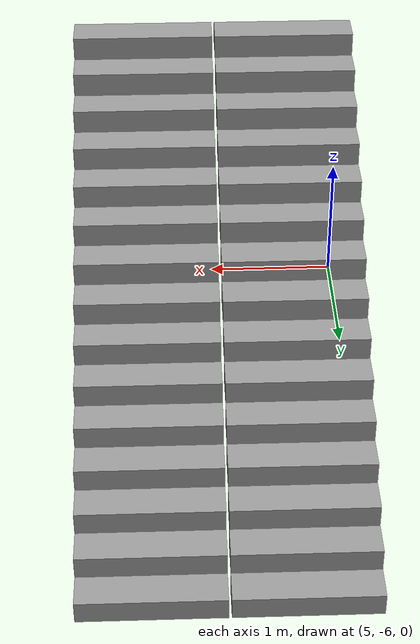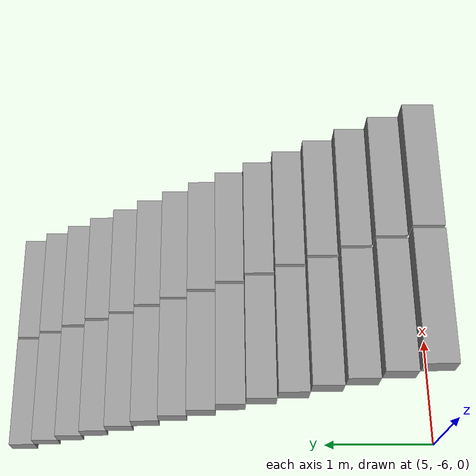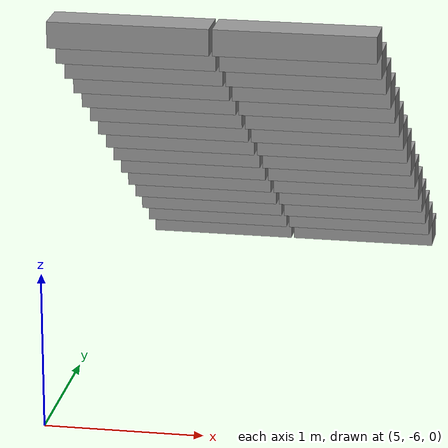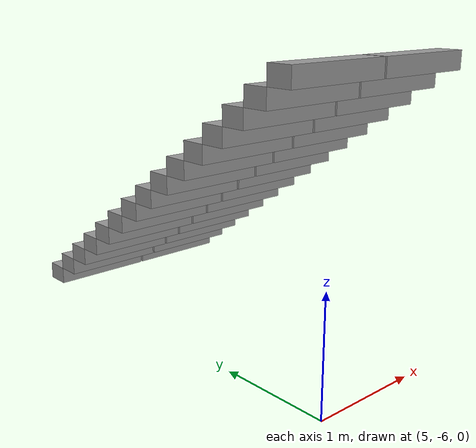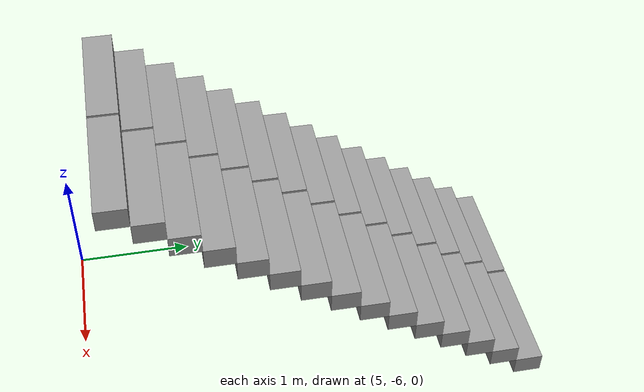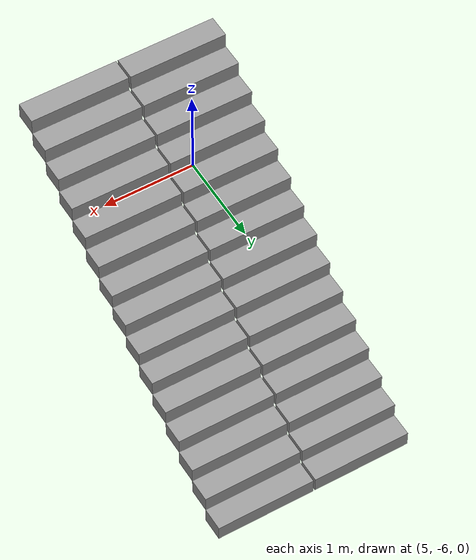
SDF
<?xml version='1.0'?>
<sdf version='1.6'>
  <model name='konetalo'>
    <pose frame=''>5.9917 -3.89254 0 0 -0 0</pose>
    <link name='Stairs_0'>
      <visual name='Stairs_0_Visual_0'>
        <pose frame=''>0.510092 1.63333 0.083333 0 -0 0</pose>
        <geometry>
          <box>
            <size>1 0.233333 0.166667</size>
          </box>
        </geometry>
        <material>
          <script>
            <uri>file://media/materials/scripts/gazebo.material</uri>
            <name>Gazebo/Grey</name>
          </script>
          <ambient>1 1 1 1</ambient>
        </material>
      </visual>
      <collision name='Stairs_0_Collision_0'>
        <geometry>
          <box>
            <size>1 0.233333 0.166667</size>
          </box>
        </geometry>
        <pose frame=''>0.510092 1.63333 0.083333 0 -0 0</pose>
      </collision>
      <visual name='Stairs_0_Visual_1'>
        <pose frame=''>0.510092 1.4 0.25 0 -0 0</pose>
        <geometry>
          <box>
            <size>1 0.233333 0.166667</size>
          </box>
        </geometry>
        <material>
          <script>
            <uri>file://media/materials/scripts/gazebo.material</uri>
            <name>Gazebo/Grey</name>
          </script>
          <ambient>1 1 1 1</ambient>
        </material>
      </visual>
      <collision name='Stairs_0_Collision_1'>
        <geometry>
          <box>
            <size>1 0.233333 0.166667</size>
          </box>
        </geometry>
        <pose frame=''>0.510092 1.4 0.25 0 -0 0</pose>
      </collision>
      <visual name='Stairs_0_Visual_2'>
        <pose frame=''>0.510092 1.16667 0.416667 0 -0 0</pose>
        <geometry>
          <box>
            <size>1 0.233333 0.166667</size>
          </box>
        </geometry>
        <material>
          <script>
            <uri>file://media/materials/scripts/gazebo.material</uri>
            <name>Gazebo/Grey</name>
          </script>
          <ambient>1 1 1 1</ambient>
        </material>
      </visual>
      <collision name='Stairs_0_Collision_2'>
        <geometry>
          <box>
            <size>1 0.233333 0.166667</size>
          </box>
        </geometry>
        <pose frame=''>0.510092 1.16667 0.416667 0 -0 0</pose>
      </collision>
      <visual name='Stairs_0_Visual_3'>
        <pose frame=''>0.510092 0.933333 0.583333 0 -0 0</pose>
        <geometry>
          <box>
            <size>1 0.233333 0.166667</size>
          </box>
        </geometry>
        <material>
          <script>
            <uri>file://media/materials/scripts/gazebo.material</uri>
            <name>Gazebo/Grey</name>
          </script>
          <ambient>1 1 1 1</ambient>
        </material>
      </visual>
      <collision name='Stairs_0_Collision_3'>
        <geometry>
          <box>
            <size>1 0.233333 0.166667</size>
          </box>
        </geometry>
        <pose frame=''>0.510092 0.933333 0.583333 0 -0 0</pose>
      </collision>
      <visual name='Stairs_0_Visual_4'>
        <pose frame=''>0.510092 0.7 0.75 0 -0 0</pose>
        <geometry>
          <box>
            <size>1 0.233333 0.166667</size>
          </box>
        </geometry>
        <material>
          <script>
            <uri>file://media/materials/scripts/gazebo.material</uri>
            <name>Gazebo/Grey</name>
          </script>
          <ambient>1 1 1 1</ambient>
        </material>
      </visual>
      <collision name='Stairs_0_Collision_4'>
        <geometry>
          <box>
            <size>1 0.233333 0.166667</size>
          </box>
        </geometry>
        <pose frame=''>0.510092 0.7 0.75 0 -0 0</pose>
      </collision>
      <visual name='Stairs_0_Visual_5'>
        <pose frame=''>0.510092 0.466667 0.916667 0 -0 0</pose>
        <geometry>
          <box>
            <size>1 0.233333 0.166667</size>
          </box>
        </geometry>
        <material>
          <script>
            <uri>file://media/materials/scripts/gazebo.material</uri>
            <name>Gazebo/Grey</name>
          </script>
          <ambient>1 1 1 1</ambient>
        </material>
      </visual>
      <collision name='Stairs_0_Collision_5'>
        <geometry>
          <box>
            <size>1 0.233333 0.166667</size>
          </box>
        </geometry>
        <pose frame=''>0.510092 0.466667 0.916667 0 -0 0</pose>
      </collision>
      <visual name='Stairs_0_Visual_6'>
        <pose frame=''>0.510092 0.233333 1.08333 0 -0 0</pose>
        <geometry>
          <box>
            <size>1 0.233333 0.166667</size>
          </box>
        </geometry>
        <material>
          <script>
            <uri>file://media/materials/scripts/gazebo.material</uri>
            <name>Gazebo/Grey</name>
          </script>
          <ambient>1 1 1 1</ambient>
        </material>
      </visual>
      <collision name='Stairs_0_Collision_6'>
        <geometry>
          <box>
            <size>1 0.233333 0.166667</size>
          </box>
        </geometry>
        <pose frame=''>0.510092 0.233333 1.08333 0 -0 0</pose>
      </collision>
      <visual name='Stairs_0_Visual_7'>
        <pose frame=''>0.510092 0 1.25 0 -0 0</pose>
        <geometry>
          <box>
            <size>1 0.233333 0.166667</size>
          </box>
        </geometry>
        <material>
          <script>
            <uri>file://media/materials/scripts/gazebo.material</uri>
            <name>Gazebo/Grey</name>
          </script>
          <ambient>1 1 1 1</ambient>
        </material>
      </visual>
      <collision name='Stairs_0_Collision_7'>
        <geometry>
          <box>
            <size>1 0.233333 0.166667</size>
          </box>
        </geometry>
        <pose frame=''>0.510092 0 1.25 0 -0 0</pose>
      </collision>
      <visual name='Stairs_0_Visual_8'>
        <pose frame=''>0.510092 -0.233334 1.41667 0 -0 0</pose>
        <geometry>
          <box>
            <size>1 0.233333 0.166667</size>
          </box>
        </geometry>
        <material>
          <script>
            <uri>file://media/materials/scripts/gazebo.material</uri>
            <name>Gazebo/Grey</name>
          </script>
          <ambient>1 1 1 1</ambient>
        </material>
      </visual>
      <collision name='Stairs_0_Collision_8'>
        <geometry>
          <box>
            <size>1 0.233333 0.166667</size>
          </box>
        </geometry>
        <pose frame=''>0.510092 -0.233334 1.41667 0 -0 0</pose>
      </collision>
      <visual name='Stairs_0_Visual_9'>
        <pose frame=''>0.510092 -0.466667 1.58333 0 -0 0</pose>
        <geometry>
          <box>
            <size>1 0.233333 0.166667</size>
          </box>
        </geometry>
        <material>
          <script>
            <uri>file://media/materials/scripts/gazebo.material</uri>
            <name>Gazebo/Grey</name>
          </script>
          <ambient>1 1 1 1</ambient>
        </material>
      </visual>
      <collision name='Stairs_0_Collision_9'>
        <geometry>
          <box>
            <size>1 0.233333 0.166667</size>
          </box>
        </geometry>
        <pose frame=''>0.510092 -0.466667 1.58333 0 -0 0</pose>
      </collision>
      <visual name='Stairs_0_Visual_10'>
        <pose frame=''>0.510092 -0.7 1.75 0 -0 0</pose>
        <geometry>
          <box>
            <size>1 0.233333 0.166667</size>
          </box>
        </geometry>
        <material>
          <script>
            <uri>file://media/materials/scripts/gazebo.material</uri>
            <name>Gazebo/Grey</name>
          </script>
          <ambient>1 1 1 1</ambient>
        </material>
      </visual>
      <collision name='Stairs_0_Collision_10'>
        <geometry>
          <box>
            <size>1 0.233333 0.166667</size>
          </box>
        </geometry>
        <pose frame=''>0.510092 -0.7 1.75 0 -0 0</pose>
      </collision>
      <visual name='Stairs_0_Visual_11'>
        <pose frame=''>0.510092 -0.933333 1.91667 0 -0 0</pose>
        <geometry>
          <box>
            <size>1 0.233333 0.166667</size>
          </box>
        </geometry>
        <material>
          <script>
            <uri>file://media/materials/scripts/gazebo.material</uri>
            <name>Gazebo/Grey</name>
          </script>
          <ambient>1 1 1 1</ambient>
        </material>
      </visual>
      <collision name='Stairs_0_Collision_11'>
        <geometry>
          <box>
            <size>1 0.233333 0.166667</size>
          </box>
        </geometry>
        <pose frame=''>0.510092 -0.933333 1.91667 0 -0 0</pose>
      </collision>
      <visual name='Stairs_0_Visual_12'>
        <pose frame=''>0.510092 -1.16667 2.08333 0 -0 0</pose>
        <geometry>
          <box>
            <size>1 0.233333 0.166667</size>
          </box>
        </geometry>
        <material>
          <script>
            <uri>file://media/materials/scripts/gazebo.material</uri>
            <name>Gazebo/Grey</name>
          </script>
          <ambient>1 1 1 1</ambient>
        </material>
      </visual>
      <collision name='Stairs_0_Collision_12'>
        <geometry>
          <box>
            <size>1 0.233333 0.166667</size>
          </box>
        </geometry>
        <pose frame=''>0.510092 -1.16667 2.08333 0 -0 0</pose>
      </collision>
      <visual name='Stairs_0_Visual_13'>
        <pose frame=''>0.510092 -1.4 2.25 0 -0 0</pose>
        <geometry>
          <box>
            <size>1 0.233333 0.166667</size>
          </box>
        </geometry>
        <material>
          <script>
            <uri>file://media/materials/scripts/gazebo.material</uri>
            <name>Gazebo/Grey</name>
          </script>
          <ambient>1 1 1 1</ambient>
        </material>
      </visual>
      <collision name='Stairs_0_Collision_13'>
        <geometry>
          <box>
            <size>1 0.233333 0.166667</size>
          </box>
        </geometry>
        <pose frame=''>0.510092 -1.4 2.25 0 -0 0</pose>
      </collision>
      <visual name='Stairs_0_Visual_14'>
        <pose frame=''>0.510092 -1.63333 2.41667 0 -0 0</pose>
        <geometry>
          <box>
            <size>1 0.233333 0.166667</size>
          </box>
        </geometry>
        <material>
          <script>
            <uri>file://media/materials/scripts/gazebo.material</uri>
            <name>Gazebo/Grey</name>
          </script>
          <ambient>1 1 1 1</ambient>
        </material>
      </visual>
      <collision name='Stairs_0_Collision_14'>
        <geometry>
          <box>
            <size>1 0.233333 0.166667</size>
          </box>
        </geometry>
        <pose frame=''>0.510092 -1.63333 2.41667 0 -0 0</pose>
      </collision>
    </link>
    <link name='Stairs_1'>
      <visual name='Stairs_1_Visual_0'>
        <pose frame=''>-0.510092 1.63333 0.083333 0 -0 0</pose>
        <geometry>
          <box>
            <size>1 0.233333 0.166667</size>
          </box>
        </geometry>
        <material>
          <script>
            <uri>file://media/materials/scripts/gazebo.material</uri>
            <name>Gazebo/Grey</name>
          </script>
          <ambient>1 1 1 1</ambient>
        </material>
      </visual>
      <collision name='Stairs_1_Collision_0'>
        <geometry>
          <box>
            <size>1 0.233333 0.166667</size>
          </box>
        </geometry>
        <pose frame=''>-0.510092 1.63333 0.083333 0 -0 0</pose>
      </collision>
      <visual name='Stairs_1_Visual_1'>
        <pose frame=''>-0.510092 1.4 0.25 0 -0 0</pose>
        <geometry>
          <box>
            <size>1 0.233333 0.166667</size>
          </box>
        </geometry>
        <material>
          <script>
            <uri>file://media/materials/scripts/gazebo.material</uri>
            <name>Gazebo/Grey</name>
          </script>
          <ambient>1 1 1 1</ambient>
        </material>
      </visual>
      <collision name='Stairs_1_Collision_1'>
        <geometry>
          <box>
            <size>1 0.233333 0.166667</size>
          </box>
        </geometry>
        <pose frame=''>-0.510092 1.4 0.25 0 -0 0</pose>
      </collision>
      <visual name='Stairs_1_Visual_2'>
        <pose frame=''>-0.510092 1.16667 0.416667 0 -0 0</pose>
        <geometry>
          <box>
            <size>1 0.233333 0.166667</size>
          </box>
        </geometry>
        <material>
          <script>
            <uri>file://media/materials/scripts/gazebo.material</uri>
            <name>Gazebo/Grey</name>
          </script>
          <ambient>1 1 1 1</ambient>
        </material>
      </visual>
      <collision name='Stairs_1_Collision_2'>
        <geometry>
          <box>
            <size>1 0.233333 0.166667</size>
          </box>
        </geometry>
        <pose frame=''>-0.510092 1.16667 0.416667 0 -0 0</pose>
      </collision>
      <visual name='Stairs_1_Visual_3'>
        <pose frame=''>-0.510092 0.933333 0.583333 0 -0 0</pose>
        <geometry>
          <box>
            <size>1 0.233333 0.166667</size>
          </box>
        </geometry>
        <material>
          <script>
            <uri>file://media/materials/scripts/gazebo.material</uri>
            <name>Gazebo/Grey</name>
          </script>
          <ambient>1 1 1 1</ambient>
        </material>
      </visual>
      <collision name='Stairs_1_Collision_3'>
        <geometry>
          <box>
            <size>1 0.233333 0.166667</size>
          </box>
        </geometry>
        <pose frame=''>-0.510092 0.933333 0.583333 0 -0 0</pose>
      </collision>
      <visual name='Stairs_1_Visual_4'>
        <pose frame=''>-0.510092 0.7 0.75 0 -0 0</pose>
        <geometry>
          <box>
            <size>1 0.233333 0.166667</size>
          </box>
        </geometry>
        <material>
          <script>
            <uri>file://media/materials/scripts/gazebo.material</uri>
            <name>Gazebo/Grey</name>
          </script>
          <ambient>1 1 1 1</ambient>
        </material>
      </visual>
      <collision name='Stairs_1_Collision_4'>
        <geometry>
          <box>
            <size>1 0.233333 0.166667</size>
          </box>
        </geometry>
        <pose frame=''>-0.510092 0.7 0.75 0 -0 0</pose>
      </collision>
      <visual name='Stairs_1_Visual_5'>
        <pose frame=''>-0.510092 0.466667 0.916667 0 -0 0</pose>
        <geometry>
          <box>
            <size>1 0.233333 0.166667</size>
          </box>
        </geometry>
        <material>
          <script>
            <uri>file://media/materials/scripts/gazebo.material</uri>
            <name>Gazebo/Grey</name>
          </script>
          <ambient>1 1 1 1</ambient>
        </material>
      </visual>
      <collision name='Stairs_1_Collision_5'>
        <geometry>
          <box>
            <size>1 0.233333 0.166667</size>
          </box>
        </geometry>
        <pose frame=''>-0.510092 0.466667 0.916667 0 -0 0</pose>
      </collision>
      <visual name='Stairs_1_Visual_6'>
        <pose frame=''>-0.510092 0.233333 1.08333 0 -0 0</pose>
        <geometry>
          <box>
            <size>1 0.233333 0.166667</size>
          </box>
        </geometry>
        <material>
          <script>
            <uri>file://media/materials/scripts/gazebo.material</uri>
            <name>Gazebo/Grey</name>
          </script>
          <ambient>1 1 1 1</ambient>
        </material>
      </visual>
      <collision name='Stairs_1_Collision_6'>
        <geometry>
          <box>
            <size>1 0.233333 0.166667</size>
          </box>
        </geometry>
        <pose frame=''>-0.510092 0.233333 1.08333 0 -0 0</pose>
      </collision>
      <visual name='Stairs_1_Visual_7'>
        <pose frame=''>-0.510092 0 1.25 0 -0 0</pose>
        <geometry>
          <box>
            <size>1 0.233333 0.166667</size>
          </box>
        </geometry>
        <material>
          <script>
            <uri>file://media/materials/scripts/gazebo.material</uri>
            <name>Gazebo/Grey</name>
          </script>
          <ambient>1 1 1 1</ambient>
        </material>
      </visual>
      <collision name='Stairs_1_Collision_7'>
        <geometry>
          <box>
            <size>1 0.233333 0.166667</size>
          </box>
        </geometry>
        <pose frame=''>-0.510092 0 1.25 0 -0 0</pose>
      </collision>
      <visual name='Stairs_1_Visual_8'>
        <pose frame=''>-0.510092 -0.233334 1.41667 0 -0 0</pose>
        <geometry>
          <box>
            <size>1 0.233333 0.166667</size>
          </box>
        </geometry>
        <material>
          <script>
            <uri>file://media/materials/scripts/gazebo.material</uri>
            <name>Gazebo/Grey</name>
          </script>
          <ambient>1 1 1 1</ambient>
        </material>
      </visual>
      <collision name='Stairs_1_Collision_8'>
        <geometry>
          <box>
            <size>1 0.233333 0.166667</size>
          </box>
        </geometry>
        <pose frame=''>-0.510092 -0.233334 1.41667 0 -0 0</pose>
      </collision>
      <visual name='Stairs_1_Visual_9'>
        <pose frame=''>-0.510092 -0.466667 1.58333 0 -0 0</pose>
        <geometry>
          <box>
            <size>1 0.233333 0.166667</size>
          </box>
        </geometry>
        <material>
          <script>
            <uri>file://media/materials/scripts/gazebo.material</uri>
            <name>Gazebo/Grey</name>
          </script>
          <ambient>1 1 1 1</ambient>
        </material>
      </visual>
      <collision name='Stairs_1_Collision_9'>
        <geometry>
          <box>
            <size>1 0.233333 0.166667</size>
          </box>
        </geometry>
        <pose frame=''>-0.510092 -0.466667 1.58333 0 -0 0</pose>
      </collision>
      <visual name='Stairs_1_Visual_10'>
        <pose frame=''>-0.510092 -0.7 1.75 0 -0 0</pose>
        <geometry>
          <box>
            <size>1 0.233333 0.166667</size>
          </box>
        </geometry>
        <material>
          <script>
            <uri>file://media/materials/scripts/gazebo.material</uri>
            <name>Gazebo/Grey</name>
          </script>
          <ambient>1 1 1 1</ambient>
        </material>
      </visual>
      <collision name='Stairs_1_Collision_10'>
        <geometry>
          <box>
            <size>1 0.233333 0.166667</size>
          </box>
        </geometry>
        <pose frame=''>-0.510092 -0.7 1.75 0 -0 0</pose>
      </collision>
      <visual name='Stairs_1_Visual_11'>
        <pose frame=''>-0.510092 -0.933333 1.91667 0 -0 0</pose>
        <geometry>
          <box>
            <size>1 0.233333 0.166667</size>
          </box>
        </geometry>
        <material>
          <script>
            <uri>file://media/materials/scripts/gazebo.material</uri>
            <name>Gazebo/Grey</name>
          </script>
          <ambient>1 1 1 1</ambient>
        </material>
      </visual>
      <collision name='Stairs_1_Collision_11'>
        <geometry>
          <box>
            <size>1 0.233333 0.166667</size>
          </box>
        </geometry>
        <pose frame=''>-0.510092 -0.933333 1.91667 0 -0 0</pose>
      </collision>
      <visual name='Stairs_1_Visual_12'>
        <pose frame=''>-0.510092 -1.16667 2.08333 0 -0 0</pose>
        <geometry>
          <box>
            <size>1 0.233333 0.166667</size>
          </box>
        </geometry>
        <material>
          <script>
            <uri>file://media/materials/scripts/gazebo.material</uri>
            <name>Gazebo/Grey</name>
          </script>
          <ambient>1 1 1 1</ambient>
        </material>
      </visual>
      <collision name='Stairs_1_Collision_12'>
        <geometry>
          <box>
            <size>1 0.233333 0.166667</size>
          </box>
        </geometry>
        <pose frame=''>-0.510092 -1.16667 2.08333 0 -0 0</pose>
      </collision>
      <visual name='Stairs_1_Visual_13'>
        <pose frame=''>-0.510092 -1.4 2.25 0 -0 0</pose>
        <geometry>
          <box>
            <size>1 0.233333 0.166667</size>
          </box>
        </geometry>
        <material>
          <script>
            <uri>file://media/materials/scripts/gazebo.material</uri>
            <name>Gazebo/Grey</name>
          </script>
          <ambient>1 1 1 1</ambient>
        </material>
      </visual>
      <collision name='Stairs_1_Collision_13'>
        <geometry>
          <box>
            <size>1 0.233333 0.166667</size>
          </box>
        </geometry>
        <pose frame=''>-0.510092 -1.4 2.25 0 -0 0</pose>
      </collision>
      <visual name='Stairs_1_Visual_14'>
        <pose frame=''>-0.510092 -1.63333 2.41667 0 -0 0</pose>
        <geometry>
          <box>
            <size>1 0.233333 0.166667</size>
          </box>
        </geometry>
        <material>
          <script>
            <uri>file://media/materials/scripts/gazebo.material</uri>
            <name>Gazebo/Grey</name>
          </script>
          <ambient>1 1 1 1</ambient>
        </material>
      </visual>
      <collision name='Stairs_1_Collision_14'>
        <geometry>
          <box>
            <size>1 0.233333 0.166667</size>
          </box>
        </geometry>
        <pose frame=''>-0.510092 -1.63333 2.41667 0 -0 0</pose>
      </collision>
    </link>
    <static>1</static>
  </model>
</sdf>
